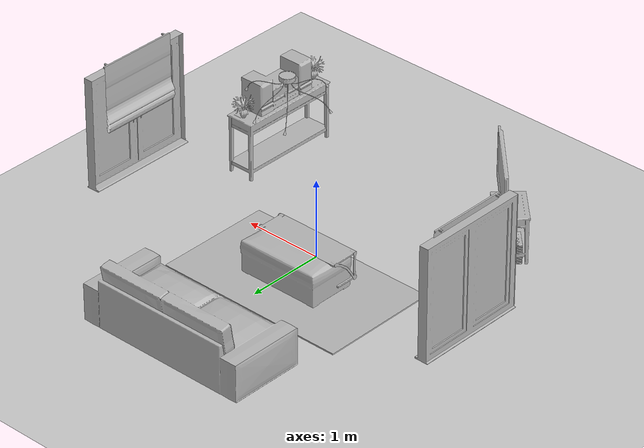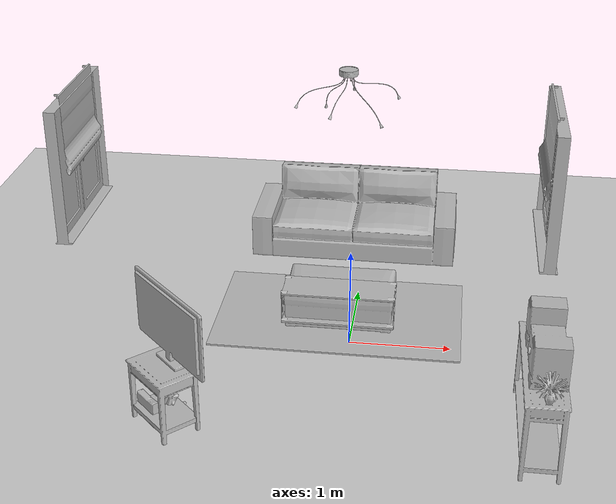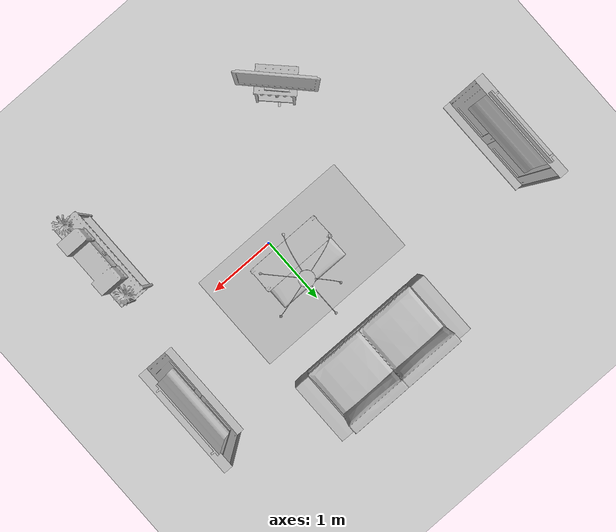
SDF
<sdf version="1.4">
 <world name="default">
  <light name="sun" type="directional">
   <pose>0 0 10 0 -0 0</pose>
   <diffuse>0.8 0.8 0.8 1</diffuse>
   <specular>0.2 0.2 0.2 1</specular>
   <attenuation>
    <range>1000</range>
    <constant>0.9</constant>
    <linear>0.01</linear>
    <quadratic>0.001</quadratic>
   </attenuation>
   <direction>-0.5 0.1 -0.9</direction>
  </light>
  <model name="ground_plane">
   <static>1</static>
   <link name="link">
    <collision name="collision">
     <geometry><plane><normal>0 0 1</normal><size>100 100</size></plane></geometry>
     <surface><friction><ode><mu>100</mu><mu2>50</mu2></ode></friction></surface>
    </collision>
    <visual name="visual">
     <cast_shadows>0</cast_shadows>
     <geometry><plane><normal>0 0 1</normal><size>100 100</size></plane></geometry>
     <material>
      <script><uri>file://media/materials/scripts/gazebo.material</uri><name>Gazebo/Grey</name></script>
     </material>
    </visual>
    <velocity_decay><linear>0</linear><angular>0</angular></velocity_decay>
   </link>
  </model>
  <physics type="ode">
   <max_step_size>0.001</max_step_size>
   <real_time_factor>1</real_time_factor>
   <real_time_update_rate>1000</real_time_update_rate>
   <gravity>0 0 -9.8</gravity>
  </physics>
  <scene><ambient>0.4 0.4 0.4 1</ambient><background>0.7 0.7 0.7 1</background><shadows>1</shadows></scene>
  <spherical_coordinates>
   <surface_model>EARTH_WGS84</surface_model>
   <latitude_deg>0</latitude_deg>
   <longitude_deg>0</longitude_deg>
   <elevation>0</elevation>
   <heading_deg>0</heading_deg>
  </spherical_coordinates>
  <model name="212_0">
   <pose>-2.91566 0.874439 0.81 0 -0 0</pose>
   <static>1</static>
   <link name="link">
    <collision name="collision"><geometry><box><size>0.175 1.4 2</size></box></geometry></collision>
    <visual name="visual"><geometry><mesh><uri>model://212/212.dae</uri></mesh></geometry></visual>
    <velocity_decay><linear>0</linear><angular>0</angular></velocity_decay>
   </link>
  </model>
  <model name="212_1">
   <pose>1.89162 0.87697 0.81 0 -0 3.14159</pose>
   <static>1</static>
   <link name="link">
    <collision name="collision"><geometry><box><size>0.175 1.4 2</size></box></geometry></collision>
    <visual name="visual"><geometry><mesh><uri>model://212/212.dae</uri></mesh></geometry></visual>
    <velocity_decay><linear>0</linear><angular>0</angular></velocity_decay>
   </link>
  </model>
  <model name="s__385_0">
   <pose>-0.137997 2.1369 0 0 0 -1.5708</pose>
   <static>1</static>
   <link name="link">
    <collision name="collision"><geometry><box><size>0.95 2.28 2</size></box></geometry></collision>
    <visual name="visual"><geometry><mesh><uri>model://s__385/s__385.dae</uri></mesh></geometry></visual>
    <velocity_decay><linear>0</linear><angular>0</angular></velocity_decay>
   </link>
  </model>
  <model name="558_0">
   <pose>-0.137997 0.487397 0 0 -0 1.5708</pose>
   <static>1</static>
   <link name="link">
    <collision name="collision"><geometry><box><size>0.62 1.09 2</size></box></geometry></collision>
    <visual name="visual"><geometry><mesh><uri>model://558/558.dae</uri></mesh></geometry></visual>
    <velocity_decay><linear>0</linear><angular>0</angular></velocity_decay>
   </link>
  </model>
  <model name="113_0">
   <pose>-1.42714 -1.45311 0.6 0 -0 0.767945</pose>
   <static>1</static>
   <link name="link">
    <collision name="collision"><geometry><box><size>0.1 1.07995 2</size></box></geometry></collision>
    <visual name="visual"><geometry><mesh><uri>model://113/113.dae</uri></mesh></geometry></visual>
    <velocity_decay><linear>0</linear><angular>0</angular></velocity_decay>
   </link>
  </model>
  <model name="621_0">
   <pose>-2.87565 0.876898 1.48 0 -0 0</pose>
   <static>1</static>
   <link name="link">
    <collision name="collision"><geometry><box><size>0.119933 1 2</size></box></geometry></collision>
    <visual name="visual"><geometry><mesh><uri>model://621/621.dae</uri></mesh></geometry></visual>
    <velocity_decay><linear>0</linear><angular>0</angular></velocity_decay>
   </link>
  </model>
  <model name="621_1">
   <pose>1.83397 0.876897 1.48 0 -0 3.14159</pose>
   <static>1</static>
   <link name="link">
    <collision name="collision"><geometry><box><size>0.119933 1 2</size></box></geometry></collision>
    <visual name="visual"><geometry><mesh><uri>model://621/621.dae</uri></mesh></geometry></visual>
    <velocity_decay><linear>0</linear><angular>0</angular></velocity_decay>
   </link>
  </model>
  <model name="s__1004_0">
   <pose>1.76723 -1.2831 0 0 -0 0</pose>
   <static>1</static>
   <link name="link">
    <collision name="collision"><geometry><box><size>0.37 1.33 2</size></box></geometry></collision>
    <visual name="visual"><geometry><mesh><uri>model://s__1004/s__1004.dae</uri></mesh></geometry></visual>
    <velocity_decay><linear>0</linear><angular>0</angular></velocity_decay>
   </link>
  </model>
  <model name="741_0">
   <pose>1.77648 -1.87102 0.75 0 -0 0</pose>
   <static>1</static>
   <link name="link">
    <collision name="collision"><geometry><box><size>0.279061 0.27056 2</size></box></geometry></collision>
    <visual name="visual"><geometry><mesh><uri>model://741/741.dae</uri></mesh></geometry></visual>
    <velocity_decay><linear>0</linear><angular>0</angular></velocity_decay>
   </link>
  </model>
  <model name="238_0">
   <pose>-0.149999 0.512667 0 0 -0 1.5708</pose>
   <static>1</static>
   <link name="link">
    <collision name="collision"><geometry><box><size>1.5 2.5 0</size></box></geometry></collision>
    <visual name="visual"><geometry><mesh><uri>model://238/238.dae</uri></mesh></geometry></visual>
    <velocity_decay><linear>0</linear><angular>0</angular></velocity_decay>
   </link>
  </model>
  <model name="s__1005_0">
   <pose>-1.48189 -1.53319 0 0 -0 0.785398</pose>
   <static>1</static>
   <link name="link">
    <collision name="collision"><geometry><box><size>0.4 0.57 2</size></box></geometry></collision>
    <visual name="visual"><geometry><mesh><uri>model://s__1005/s__1005.dae</uri></mesh></geometry></visual>
    <velocity_decay><linear>0</linear><angular>0</angular></velocity_decay>
   </link>
  </model>
  <model name="741_1">
   <pose>1.775 -0.703372 0.75 0 -0 0</pose>
   <static>1</static>
   <link name="link">
    <collision name="collision"><geometry><box><size>0.279061 0.27056 2</size></box></geometry></collision>
    <visual name="visual"><geometry><mesh><uri>model://741/741.dae</uri></mesh></geometry></visual>
    <velocity_decay><linear>0</linear><angular>0</angular></velocity_decay>
   </link>
  </model>
  <model name="218_0">
   <pose>1.78502 -1.2711 0.75 0 -0 3.14159</pose>
   <static>1</static>
   <link name="link">
    <collision name="collision"><geometry><box><size>0.318 0.84 2</size></box></geometry></collision>
    <visual name="visual"><geometry><mesh><uri>model://218/218.dae</uri></mesh></geometry></visual>
    <velocity_decay><linear>0</linear><angular>0</angular></velocity_decay>
   </link>
  </model>
  <model name="97_0">
   <pose>-0.138 0.260854 0.09 0 -0 1.5708</pose>
   <static>1</static>
   <link name="link">
    <collision name="collision"><geometry><box><size>0.38 1.13 2</size></box></geometry></collision>
    <visual name="visual"><geometry><mesh><uri>model://97/97.dae</uri></mesh></geometry></visual>
    <velocity_decay><linear>0</linear><angular>0</angular></velocity_decay>
   </link>
  </model>
  <model name="651_0">
   <pose>-1.43743 -1.49714 0.14 0 -0 0.785398</pose>
   <static>1</static>
   <link name="link">
    <collision name="collision"><geometry><box><size>0.300008 0.370002 2</size></box></geometry></collision>
    <visual name="visual"><geometry><mesh><uri>model://651/651.dae</uri></mesh></geometry></visual>
    <velocity_decay><linear>0</linear><angular>0</angular></velocity_decay>
   </link>
  </model>
  <model name="s__479_0">
   <pose>-0.102003 0.5649 2.13 0 -0 0</pose>
   <static>1</static>
   <link name="link">
    <collision name="collision"><geometry><box><size>0.98 1.03 2</size></box></geometry></collision>
    <visual name="visual"><geometry><mesh><uri>model://s__479/s__479.dae</uri></mesh></geometry></visual>
    <velocity_decay><linear>0</linear><angular>0</angular></velocity_decay>
   </link>
  </model>
 </world>
</sdf>
